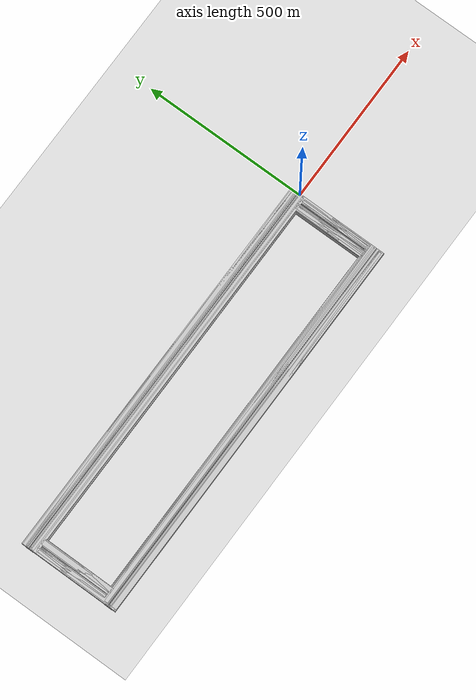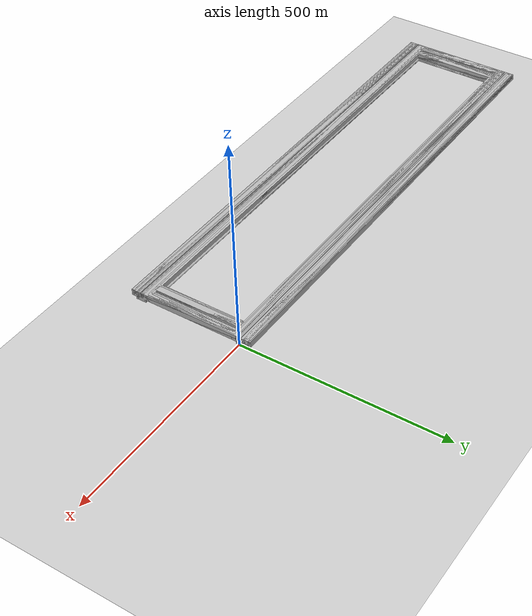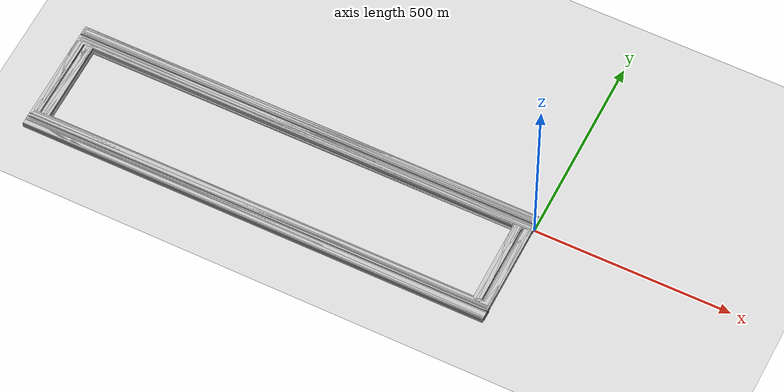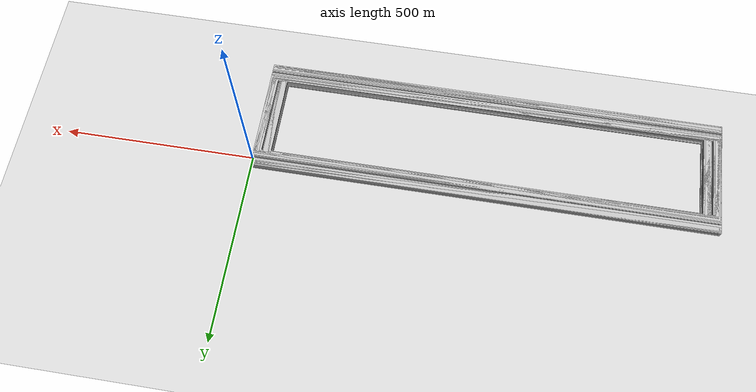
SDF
<sdf version="1.4">
 <world name="default">
  <light name="sun" type="directional">
   <pose>0 0 10 0 -0 0</pose>
   <diffuse>0.8 0.8 0.8 1</diffuse>
   <specular>0.2 0.2 0.2 1</specular>
   <attenuation>
    <range>1000</range>
    <constant>0.9</constant>
    <linear>0.01</linear>
    <quadratic>0.001</quadratic>
   </attenuation>
   <direction>-0.5 0.1 -0.9</direction>
  </light>
  <model name="ground_plane">
   <static>1</static>
   <link name="link">
    <collision name="collision">
     <geometry><plane><normal>0 0 1</normal><size>100 100</size></plane></geometry>
     <surface><friction><ode><mu>100</mu><mu2>50</mu2></ode></friction></surface>
    </collision>
    <visual name="visual">
     <cast_shadows>0</cast_shadows>
     <geometry><plane><normal>0 0 1</normal><size>100 100</size></plane></geometry>
     <material>
      <script><uri>file://media/materials/scripts/gazebo.material</uri><name>Gazebo/Grey</name></script>
     </material>
    </visual>
    <velocity_decay><linear>0</linear><angular>0</angular></velocity_decay>
   </link>
  </model>
  <physics type="ode">
   <max_step_size>0.001</max_step_size>
   <real_time_factor>1</real_time_factor>
   <real_time_update_rate>1000</real_time_update_rate>
   <gravity>0 0 -9.8</gravity>
  </physics>
  <scene><ambient>0.4 0.4 0.4 1</ambient><background>0.7 0.7 0.7 1</background><shadows>1</shadows></scene>
  <spherical_coordinates>
   <surface_model>EARTH_WGS84</surface_model>
   <latitude_deg>0</latitude_deg>
   <longitude_deg>0</longitude_deg>
   <elevation>0</elevation>
   <heading_deg>0</heading_deg>
  </spherical_coordinates>
  <model name="Wall_1200x300x40">
   <static>1</static>
   <link name="link">
    <collision name="collision">
     <geometry><mesh><uri>model://wall_1200x300x40/meshes/wall_1200x300x40.dae</uri></mesh></geometry>
    </collision>
    <visual name="visual">
     <geometry><mesh><uri>model://wall_1200x300x40/meshes/wall_1200x300x40.dae</uri></mesh></geometry>
    </visual>
    <velocity_decay><linear>0</linear><angular>0</angular></velocity_decay>
   </link>
  </model>
  <model name="Wall_1200x300x40_0">
   <static>1</static>
   <link name="link">
    <collision name="collision">
     <geometry><mesh><uri>model://wall_1200x300x40/meshes/wall_1200x300x40.dae</uri></mesh></geometry>
    </collision>
    <visual name="visual">
     <geometry><mesh><uri>model://wall_1200x300x40/meshes/wall_1200x300x40.dae</uri></mesh></geometry>
    </visual>
    <velocity_decay><linear>0</linear><angular>0</angular></velocity_decay>
   </link>
   <pose>0 1.2 0 0 -0 0</pose>
  </model>
  <model name="Wall_1200x300x40_1">
   <static>1</static>
   <link name="link">
    <collision name="collision">
     <geometry><mesh><uri>model://wall_1200x300x40/meshes/wall_1200x300x40.dae</uri></mesh></geometry>
    </collision>
    <visual name="visual">
     <geometry><mesh><uri>model://wall_1200x300x40/meshes/wall_1200x300x40.dae</uri></mesh></geometry>
    </visual>
    <velocity_decay><linear>0</linear><angular>0</angular></velocity_decay>
   </link>
   <pose>0 2.4 0 0 -0 0</pose>
  </model>
  <model name="Wall_1200x300x40_2">
   <static>1</static>
   <link name="link">
    <collision name="collision">
     <geometry><mesh><uri>model://wall_1200x300x40/meshes/wall_1200x300x40.dae</uri></mesh></geometry>
    </collision>
    <visual name="visual">
     <geometry><mesh><uri>model://wall_1200x300x40/meshes/wall_1200x300x40.dae</uri></mesh></geometry>
    </visual>
    <velocity_decay><linear>0</linear><angular>0</angular></velocity_decay>
   </link>
   <pose>0 3.6 0 0 -0 0</pose>
  </model>
  <model name="Wall_1200x300x40_3">
   <static>1</static>
   <link name="link">
    <collision name="collision">
     <geometry><mesh><uri>model://wall_1200x300x40/meshes/wall_1200x300x40.dae</uri></mesh></geometry>
    </collision>
    <visual name="visual">
     <geometry><mesh><uri>model://wall_1200x300x40/meshes/wall_1200x300x40.dae</uri></mesh></geometry>
    </visual>
    <velocity_decay><linear>0</linear><angular>0</angular></velocity_decay>
   </link>
   <pose>0 4.8 0 0 -0 0</pose>
  </model>
  <model name="Wall_1200x300x40_4">
   <static>1</static>
   <link name="link">
    <collision name="collision">
     <geometry><mesh><uri>model://wall_1200x300x40/meshes/wall_1200x300x40.dae</uri></mesh></geometry>
    </collision>
    <visual name="visual">
     <geometry><mesh><uri>model://wall_1200x300x40/meshes/wall_1200x300x40.dae</uri></mesh></geometry>
    </visual>
    <velocity_decay><linear>0</linear><angular>0</angular></velocity_decay>
   </link>
   <pose>0 6 0 0 -0 0</pose>
  </model>
  <model name="Wall_1200x300x40_5">
   <static>1</static>
   <link name="link">
    <collision name="collision">
     <geometry><mesh><uri>model://wall_1200x300x40/meshes/wall_1200x300x40.dae</uri></mesh></geometry>
    </collision>
    <visual name="visual">
     <geometry><mesh><uri>model://wall_1200x300x40/meshes/wall_1200x300x40.dae</uri></mesh></geometry>
    </visual>
    <velocity_decay><linear>0</linear><angular>0</angular></velocity_decay>
   </link>
   <pose>0 7.2 0 0 -0 0</pose>
  </model>
  <model name="Wall_1200x300x40_6">
   <static>1</static>
   <link name="link">
    <collision name="collision">
     <geometry><mesh><uri>model://wall_1200x300x40/meshes/wall_1200x300x40.dae</uri></mesh></geometry>
    </collision>
    <visual name="visual">
     <geometry><mesh><uri>model://wall_1200x300x40/meshes/wall_1200x300x40.dae</uri></mesh></geometry>
    </visual>
    <velocity_decay><linear>0</linear><angular>0</angular></velocity_decay>
   </link>
   <pose>0 8.4 0 0 -0 0</pose>
  </model>
  <model name="Wall_1200x300x40_7">
   <static>1</static>
   <link name="link">
    <collision name="collision">
     <geometry><mesh><uri>model://wall_1200x300x40/meshes/wall_1200x300x40.dae</uri></mesh></geometry>
    </collision>
    <visual name="visual">
     <geometry><mesh><uri>model://wall_1200x300x40/meshes/wall_1200x300x40.dae</uri></mesh></geometry>
    </visual>
    <velocity_decay><linear>0</linear><angular>0</angular></velocity_decay>
   </link>
   <pose>-6 0 0 0 -0 0</pose>
  </model>
  <model name="Wall_1200x300x40_8">
   <static>1</static>
   <link name="link">
    <collision name="collision">
     <geometry><mesh><uri>model://wall_1200x300x40/meshes/wall_1200x300x40.dae</uri></mesh></geometry>
    </collision>
    <visual name="visual">
     <geometry><mesh><uri>model://wall_1200x300x40/meshes/wall_1200x300x40.dae</uri></mesh></geometry>
    </visual>
    <velocity_decay><linear>0</linear><angular>0</angular></velocity_decay>
   </link>
   <pose>-6 1.2 0 0 -0 0</pose>
  </model>
  <model name="Wall_1200x300x40_9">
   <static>1</static>
   <link name="link">
    <collision name="collision">
     <geometry><mesh><uri>model://wall_1200x300x40/meshes/wall_1200x300x40.dae</uri></mesh></geometry>
    </collision>
    <visual name="visual">
     <geometry><mesh><uri>model://wall_1200x300x40/meshes/wall_1200x300x40.dae</uri></mesh></geometry>
    </visual>
    <velocity_decay><linear>0</linear><angular>0</angular></velocity_decay>
   </link>
   <pose>-6 2.4 0 0 -0 0</pose>
  </model>
  <model name="Wall_1200x300x40_10">
   <static>1</static>
   <link name="link">
    <collision name="collision">
     <geometry><mesh><uri>model://wall_1200x300x40/meshes/wall_1200x300x40.dae</uri></mesh></geometry>
    </collision>
    <visual name="visual">
     <geometry><mesh><uri>model://wall_1200x300x40/meshes/wall_1200x300x40.dae</uri></mesh></geometry>
    </visual>
    <velocity_decay><linear>0</linear><angular>0</angular></velocity_decay>
   </link>
   <pose>-6 3.6 0 0 -0 0</pose>
  </model>
  <model name="Wall_1200x300x40_11">
   <static>1</static>
   <link name="link">
    <collision name="collision">
     <geometry><mesh><uri>model://wall_1200x300x40/meshes/wall_1200x300x40.dae</uri></mesh></geometry>
    </collision>
    <visual name="visual">
     <geometry><mesh><uri>model://wall_1200x300x40/meshes/wall_1200x300x40.dae</uri></mesh></geometry>
    </visual>
    <velocity_decay><linear>0</linear><angular>0</angular></velocity_decay>
   </link>
   <pose>-6 4.8 0 0 -0 0</pose>
  </model>
  <model name="Wall_1200x300x40_12">
   <static>1</static>
   <link name="link">
    <collision name="collision">
     <geometry><mesh><uri>model://wall_1200x300x40/meshes/wall_1200x300x40.dae</uri></mesh></geometry>
    </collision>
    <visual name="visual">
     <geometry><mesh><uri>model://wall_1200x300x40/meshes/wall_1200x300x40.dae</uri></mesh></geometry>
    </visual>
    <velocity_decay><linear>0</linear><angular>0</angular></velocity_decay>
   </link>
   <pose>-6 6 0 0 -0 0</pose>
  </model>
  <model name="Wall_1200x300x40_13">
   <static>1</static>
   <link name="link">
    <collision name="collision">
     <geometry><mesh><uri>model://wall_1200x300x40/meshes/wall_1200x300x40.dae</uri></mesh></geometry>
    </collision>
    <visual name="visual">
     <geometry><mesh><uri>model://wall_1200x300x40/meshes/wall_1200x300x40.dae</uri></mesh></geometry>
    </visual>
    <velocity_decay><linear>0</linear><angular>0</angular></velocity_decay>
   </link>
   <pose>-6 7.2 0 0 -0 0</pose>
  </model>
  <model name="Wall_1200x300x40_14">
   <static>1</static>
   <link name="link">
    <collision name="collision">
     <geometry><mesh><uri>model://wall_1200x300x40/meshes/wall_1200x300x40.dae</uri></mesh></geometry>
    </collision>
    <visual name="visual">
     <geometry><mesh><uri>model://wall_1200x300x40/meshes/wall_1200x300x40.dae</uri></mesh></geometry>
    </visual>
    <velocity_decay><linear>0</linear><angular>0</angular></velocity_decay>
   </link>
   <pose>-6 8.4 0 0 -0 0</pose>
  </model>
  <model name="Wall_1200x300x40_15">
   <static>1</static>
   <link name="link">
    <collision name="collision">
     <geometry><mesh><uri>model://wall_1200x300x40/meshes/wall_1200x300x40.dae</uri></mesh></geometry>
    </collision>
    <visual name="visual">
     <geometry><mesh><uri>model://wall_1200x300x40/meshes/wall_1200x300x40.dae</uri></mesh></geometry>
    </visual>
    <velocity_decay><linear>0</linear><angular>0</angular></velocity_decay>
   </link>
   <pose>-4 3 0 0 -0 0</pose>
  </model>
  <model name="Wall_1200x300x40_16">
   <static>1</static>
   <link name="link">
    <collision name="collision">
     <geometry><mesh><uri>model://wall_1200x300x40/meshes/wall_1200x300x40.dae</uri></mesh></geometry>
    </collision>
    <visual name="visual">
     <geometry><mesh><uri>model://wall_1200x300x40/meshes/wall_1200x300x40.dae</uri></mesh></geometry>
    </visual>
    <velocity_decay><linear>0</linear><angular>0</angular></velocity_decay>
   </link>
   <pose>-4 4 0 0 -0 0</pose>
  </model>
  <model name="Wall_1200x300x40_17">
   <static>1</static>
   <link name="link">
    <collision name="collision">
     <geometry><mesh><uri>model://wall_1200x300x40/meshes/wall_1200x300x40.dae</uri></mesh></geometry>
    </collision>
    <visual name="visual">
     <geometry><mesh><uri>model://wall_1200x300x40/meshes/wall_1200x300x40.dae</uri></mesh></geometry>
    </visual>
    <velocity_decay><linear>0</linear><angular>0</angular></velocity_decay>
   </link>
   <pose>-4 5 0 0 -0 0</pose>
  </model>
  <model name="Wall_1200x300x40_18">
   <static>1</static>
   <link name="link">
    <collision name="collision">
     <geometry><mesh><uri>model://wall_1200x300x40/meshes/wall_1200x300x40.dae</uri></mesh></geometry>
    </collision>
    <visual name="visual">
     <geometry><mesh><uri>model://wall_1200x300x40/meshes/wall_1200x300x40.dae</uri></mesh></geometry>
    </visual>
    <velocity_decay><linear>0</linear><angular>0</angular></velocity_decay>
   </link>
   <pose>-4 6 0 0 -0 0</pose>
  </model>
  <model name="Wall_1200x300x40_19">
   <static>1</static>
   <link name="link">
    <collision name="collision">
     <geometry><mesh><uri>model://wall_1200x300x40/meshes/wall_1200x300x40.dae</uri></mesh></geometry>
    </collision>
    <visual name="visual">
     <geometry><mesh><uri>model://wall_1200x300x40/meshes/wall_1200x300x40.dae</uri></mesh></geometry>
    </visual>
    <velocity_decay><linear>0</linear><angular>0</angular></velocity_decay>
   </link>
   <pose>-3 3 0 0 -0 0</pose>
  </model>
  <model name="Wall_1200x300x40_20">
   <static>1</static>
   <link name="link">
    <collision name="collision">
     <geometry><mesh><uri>model://wall_1200x300x40/meshes/wall_1200x300x40.dae</uri></mesh></geometry>
    </collision>
    <visual name="visual">
     <geometry><mesh><uri>model://wall_1200x300x40/meshes/wall_1200x300x40.dae</uri></mesh></geometry>
    </visual>
    <velocity_decay><linear>0</linear><angular>0</angular></velocity_decay>
   </link>
   <pose>-3 4 0 0 -0 0</pose>
  </model>
  <model name="Wall_1200x300x40_21">
   <static>1</static>
   <link name="link">
    <collision name="collision">
     <geometry><mesh><uri>model://wall_1200x300x40/meshes/wall_1200x300x40.dae</uri></mesh></geometry>
    </collision>
    <visual name="visual">
     <geometry><mesh><uri>model://wall_1200x300x40/meshes/wall_1200x300x40.dae</uri></mesh></geometry>
    </visual>
    <velocity_decay><linear>0</linear><angular>0</angular></velocity_decay>
   </link>
   <pose>-3 6 0 0 -0 0</pose>
  </model>
  <model name="Wall_1200x300x40_22">
   <static>1</static>
   <link name="link">
    <collision name="collision">
     <geometry><mesh><uri>model://wall_1200x300x40/meshes/wall_1200x300x40.dae</uri></mesh></geometry>
    </collision>
    <visual name="visual">
     <geometry><mesh><uri>model://wall_1200x300x40/meshes/wall_1200x300x40.dae</uri></mesh></geometry>
    </visual>
    <velocity_decay><linear>0</linear><angular>0</angular></velocity_decay>
   </link>
   <pose>-1 1 0 0 -0 0</pose>
  </model>
  <model name="platform_800x500x99">
   <static>1</static>
   <link name="link">
    <collision name="collision">
     <geometry><mesh><uri>model://platform_800x500x99/meshes/platform_800x500x99.dae</uri></mesh></geometry>
    </collision>
    <visual name="visual">
     <geometry><mesh><uri>model://platform_800x500x99/meshes/platform_800x500x99.dae</uri></mesh></geometry>
    </visual>
    <velocity_decay><linear>0</linear><angular>0</angular></velocity_decay>
   </link>
   <pose>-1 1 0 0 -0 0</pose>
  </model>
  <model name="platform_800x500x99_90degree">
   <static>1</static>
   <link name="link">
    <collision name="collision">
     <geometry>
      <mesh><uri>model://platform_800x500x99_90degree/meshes/platform_800x500x99_90degree.dae</uri></mesh>
     </geometry>
    </collision>
    <visual name="visual">
     <geometry>
      <mesh><uri>model://platform_800x500x99_90degree/meshes/platform_800x500x99_90degree.dae</uri></mesh>
     </geometry>
    </visual>
    <velocity_decay><linear>0</linear><angular>0</angular></velocity_decay>
   </link>
   <pose>-1.51392 8.49163 0 0 -0 0</pose>
  </model>
  <model name="platform_800x500x99_0">
   <static>1</static>
   <link name="link">
    <collision name="collision">
     <geometry><mesh><uri>model://platform_800x500x99/meshes/platform_800x500x99.dae</uri></mesh></geometry>
    </collision>
    <visual name="visual">
     <geometry><mesh><uri>model://platform_800x500x99/meshes/platform_800x500x99.dae</uri></mesh></geometry>
    </visual>
    <velocity_decay><linear>0</linear><angular>0</angular></velocity_decay>
   </link>
   <pose>-3.44646 7.59517 0 0 -0 0</pose>
  </model>
  <model name="platform_800x500x99_90degree_0">
   <static>1</static>
   <link name="link">
    <collision name="collision">
     <geometry>
      <mesh><uri>model://platform_800x500x99_90degree/meshes/platform_800x500x99_90degree.dae</uri></mesh>
     </geometry>
    </collision>
    <visual name="visual">
     <geometry>
      <mesh><uri>model://platform_800x500x99_90degree/meshes/platform_800x500x99_90degree.dae</uri></mesh>
     </geometry>
    </visual>
    <velocity_decay><linear>0</linear><angular>0</angular></velocity_decay>
   </link>
   <pose>-5 4.40848 0 0 -0 0</pose>
  </model>
 </world>
</sdf>
